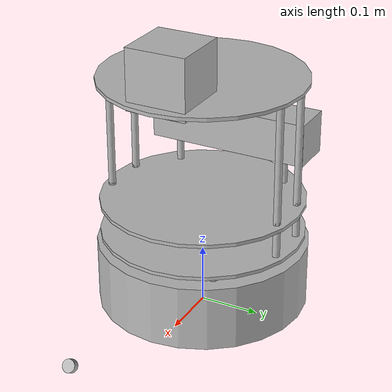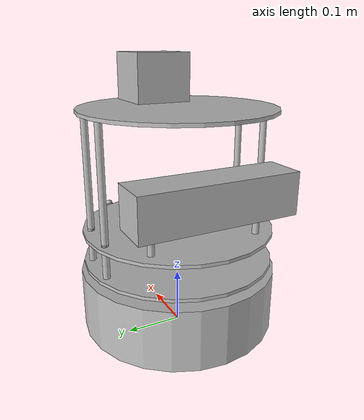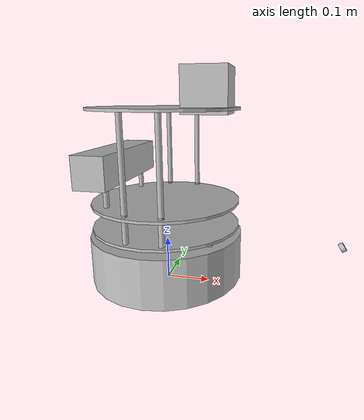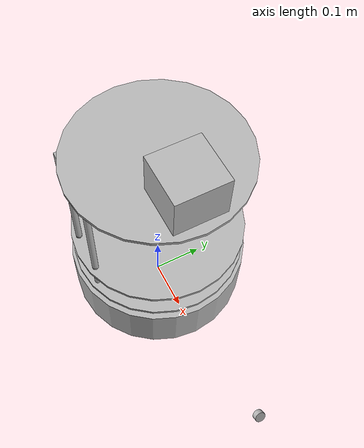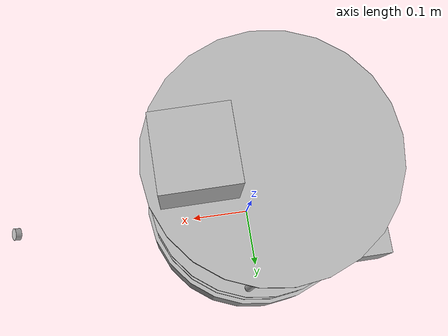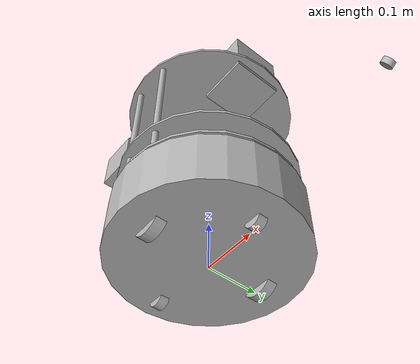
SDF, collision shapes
<sdf version='1.6'>
  <model name='turtlebot'>
    <link name='base_footprint'>
      <pose frame=''>0 0 0 0 -0 0</pose>
      <inertial>
        <pose frame=''>-0.014372 1.3e-05 0.135573 0 -0 0</pose>
        <mass>4.92131</mass>
        <inertia>
          <ixx>0.122236</ixx>
          <ixy>-4.3811e-06</ixy>
          <ixz>0.0124806</ixz>
          <iyy>0.120079</iyy>
          <iyz>6.51774e-06</iyz>
          <izz>0.0426454</izz>
        </inertia>
      </inertial>
      <collision name='base_footprint_fixed_joint_lump__base_link_collision'>
        <pose frame=''>0 0 0.06969 0 -0 0</pose>
        <geometry>
          <cylinder>
            <length>0.10938</length>
            <radius>0.176</radius>
          </cylinder>
        </geometry>
        <surface>
          <contact>
            <ode/>
          </contact>
          <friction>
            <ode/>
          </friction>
        </surface>
      </collision>
      <collision name='base_footprint_fixed_joint_lump__base_collision_collision_1'>
        <pose frame=''>0.4 0 0.1102 0 1 0</pose>
        <geometry>
          <cylinder>
            <length>0.01</length>
            <radius>0.01</radius>
          </cylinder>
        </geometry>
      </collision>
      <collision name='base_footprint_fixed_joint_lump__camera_link_collision_2'>
        <pose frame=''>-0.118 0 0.2812 0 -0 0</pose>
        <geometry>
          <box>
            <size>0.07271 0.27794 0.073</size>
          </box>
        </geometry>
        <surface>
          <contact>
            <ode/>
          </contact>
          <friction>
            <ode/>
          </friction>
        </surface>
      </collision>
      <collision name='base_footprint_fixed_joint_lump__caster_back_link_collision_3'>
        <pose frame=''>-0.135 0 0.0192 -1.5708 0 0</pose>
        <geometry>
          <cylinder>
            <length>0.0176</length>
            <radius>0.017</radius>
          </cylinder>
        </geometry>
        <surface>
          <contact>
            <ode>
              <kp>1e+08</kp>
              <kd>10000</kd>
            </ode>
          </contact>
          <friction>
            <ode>
              <mu>0</mu>
              <mu2>0</mu2>
            </ode>
          </friction>
        </surface>
      </collision>
      <collision name='base_footprint_fixed_joint_lump__caster_front_link_collision_4'>
        <pose frame=''>0.115 0 0.0172 -1.5708 0 0</pose>
        <geometry>
          <cylinder>
            <length>0.0176</length>
            <radius>0.017</radius>
          </cylinder>
        </geometry>
        <surface>
          <contact>
            <ode>
              <kp>1e+08</kp>
              <kd>10000</kd>
            </ode>
          </contact>
          <friction>
            <ode>
              <mu>0</mu>
              <mu2>0</mu2>
            </ode>
          </friction>
        </surface>
      </collision>
      <collision name='base_footprint_fixed_joint_lump__hokuyo_link_collision_5'>
        <pose frame=''>0.1 0 0.4452 0 -0 0</pose>
        <geometry>
          <box>
            <size>0.1 0.1 0.1</size>
          </box>
        </geometry>
        <surface>
          <contact>
            <ode/>
          </contact>
          <friction>
            <ode/>
          </friction>
        </surface>
      </collision>
      <collision name='base_footprint_fixed_joint_lump__plate_bottom_link_collision_6'>
        <pose frame=''>0 0 0.1408 0 -0 0</pose>
        <geometry>
          <cylinder>
            <length>0.006</length>
            <radius>0.17</radius>
          </cylinder>
        </geometry>
      </collision>
      <collision name='base_footprint_fixed_joint_lump__plate_middle_link_collision_7'>
        <pose frame=''>0 0 0.1976 0 -0 0</pose>
        <geometry>
          <cylinder>
            <length>0.006</length>
            <radius>0.17</radius>
          </cylinder>
        </geometry>
      </collision>
      <collision name='base_footprint_fixed_joint_lump__plate_top_link_collision_8'>
        <pose frame=''>0 0 0.4068 0 -0 0</pose>
        <geometry>
          <cylinder>
            <length>0.006</length>
            <radius>0.17</radius>
          </cylinder>
        </geometry>
      </collision>
      <collision name='base_footprint_fixed_joint_lump__pole_bottom_0_link_collision_9'>
        <pose frame=''>0.12 0.082 0.113 0 -0 0</pose>
        <geometry>
          <cylinder>
            <length>0.0492</length>
            <radius>0.006</radius>
          </cylinder>
        </geometry>
      </collision>
      <collision name='base_footprint_fixed_joint_lump__pole_bottom_1_link_collision_10'>
        <pose frame=''>0.055 0.12 0.113 0 -0 0</pose>
        <geometry>
          <cylinder>
            <length>0.0492</length>
            <radius>0.006</radius>
          </cylinder>
        </geometry>
      </collision>
      <collision name='base_footprint_fixed_joint_lump__pole_bottom_2_link_collision_11'>
        <pose frame=''>-0.055 0.12 0.113 0 -0 0</pose>
        <geometry>
          <cylinder>
            <length>0.0492</length>
            <radius>0.006</radius>
          </cylinder>
        </geometry>
      </collision>
      <collision name='base_footprint_fixed_joint_lump__pole_bottom_3_link_collision_12'>
        <pose frame=''>0.12 -0.082 0.113 0 -0 0</pose>
        <geometry>
          <cylinder>
            <length>0.0492</length>
            <radius>0.006</radius>
          </cylinder>
        </geometry>
      </collision>
      <collision name='base_footprint_fixed_joint_lump__pole_bottom_4_link_collision_13'>
        <pose frame=''>0.055 -0.12 0.113 0 -0 0</pose>
        <geometry>
          <cylinder>
            <length>0.0492</length>
            <radius>0.006</radius>
          </cylinder>
        </geometry>
      </collision>
      <collision name='base_footprint_fixed_joint_lump__pole_bottom_5_link_collision_14'>
        <pose frame=''>-0.055 -0.12 0.113 0 -0 0</pose>
        <geometry>
          <cylinder>
            <length>0.0492</length>
            <radius>0.006</radius>
          </cylinder>
        </geometry>
      </collision>
      <collision name='base_footprint_fixed_joint_lump__pole_kinect_0_link_collision_15'>
        <pose frame=''>-0.1024 0.098 0.2474 0 -0 0</pose>
        <geometry>
          <cylinder>
            <length>0.0936</length>
            <radius>0.006</radius>
          </cylinder>
        </geometry>
      </collision>
      <collision name='base_footprint_fixed_joint_lump__pole_kinect_1_link_collision_16'>
        <pose frame=''>-0.1024 -0.098 0.2474 0 -0 0</pose>
        <geometry>
          <cylinder>
            <length>0.0936</length>
            <radius>0.006</radius>
          </cylinder>
        </geometry>
      </collision>
      <collision name='base_footprint_fixed_joint_lump__pole_middle_0_link_collision_17'>
        <pose frame=''>0.0381 0.1505 0.1742 0 -0 0</pose>
        <geometry>
          <cylinder>
            <length>0.0608</length>
            <radius>0.006</radius>
          </cylinder>
        </geometry>
      </collision>
      <collision name='base_footprint_fixed_joint_lump__pole_middle_1_link_collision_18'>
        <pose frame=''>0.0381 -0.1505 0.1742 0 -0 0</pose>
        <geometry>
          <cylinder>
            <length>0.0608</length>
            <radius>0.006</radius>
          </cylinder>
        </geometry>
      </collision>
      <collision name='base_footprint_fixed_joint_lump__pole_middle_2_link_collision_19'>
        <pose frame=''>-0.0381 0.1505 0.1742 0 -0 0</pose>
        <geometry>
          <cylinder>
            <length>0.0608</length>
            <radius>0.006</radius>
          </cylinder>
        </geometry>
      </collision>
      <collision name='base_footprint_fixed_joint_lump__pole_middle_3_link_collision_20'>
        <pose frame=''>-0.0381 -0.1505 0.1742 0 -0 0</pose>
        <geometry>
          <cylinder>
            <length>0.0608</length>
            <radius>0.006</radius>
          </cylinder>
        </geometry>
      </collision>
      <collision name='base_footprint_fixed_joint_lump__pole_top_0_link_collision_21'>
        <pose frame=''>0.0381 0.1505 0.3022 0 -0 0</pose>
        <geometry>
          <cylinder>
            <length>0.2032</length>
            <radius>0.006</radius>
          </cylinder>
        </geometry>
      </collision>
      <collision name='base_footprint_fixed_joint_lump__pole_top_1_link_collision_22'>
        <pose frame=''>0.0381 -0.1505 0.3022 0 -0 0</pose>
        <geometry>
          <cylinder>
            <length>0.2032</length>
            <radius>0.006</radius>
          </cylinder>
        </geometry>
      </collision>
      <collision name='base_footprint_fixed_joint_lump__pole_top_2_link_collision_23'>
        <pose frame=''>-0.0381 0.1505 0.3022 0 -0 0</pose>
        <geometry>
          <cylinder>
            <length>0.2032</length>
            <radius>0.006</radius>
          </cylinder>
        </geometry>
      </collision>
      <collision name='base_footprint_fixed_joint_lump__pole_top_3_link_collision_24'>
        <pose frame=''>-0.0381 -0.1505 0.3022 0 -0 0</pose>
        <geometry>
          <cylinder>
            <length>0.2032</length>
            <radius>0.006</radius>
          </cylinder>
        </geometry>
      </collision>
      <visual name='base_footprint_fixed_joint_lump__base_link_visual'>
        <pose frame=''>0.001 0 0.06219 0 -0 0</pose>
        <geometry>
          <mesh>
            <scale>1 1 1</scale>
            <uri>model://mbot_gazebo/meshes/main_body.dae</uri>
          </mesh>
        </geometry>
        <material>
          <script>
            <uri>__default__</uri>
            <name>__default__</name>
          </script>
        </material>
      </visual>
      <visual name='base_footprint_fixed_joint_lump__bumper_link_visual_1'>
        <pose frame=''>0.4 0 0.1102 0 1 0</pose>
        <geometry>
          <cylinder>
            <length>0.01</length>
            <radius>0.01</radius>
          </cylinder>
        </geometry>
      </visual>
      <visual name='base_footprint_fixed_joint_lump__camera_link_visual_2'>
        <pose frame=''>-0.118 0 0.2812 0 -0 1.5708</pose>
        <geometry>
          <mesh>
            <scale>1 1 1</scale>
            <uri>model://mbot_gazebo/meshes/sensors/kinect.dae</uri>
          </mesh>
        </geometry>
        <material>
          <script>
            <uri>__default__</uri>
            <name>__default__</name>
          </script>
        </material>
      </visual>
      <visual name='base_footprint_fixed_joint_lump__hokuyo_link_visual_3'>
        <pose frame=''>0.1 0 0.4452 0 -0 0</pose>
        <geometry>
          <mesh>
            <scale>1 1 1</scale>
            <uri>model://mbot_gazebo/meshes/sensors/hokuyo.dae</uri>
          </mesh>
        </geometry>
        <material>
          <script>
            <uri>__default__</uri>
            <name>__default__</name>
          </script>
        </material>
      </visual>
      <visual name='base_footprint_fixed_joint_lump__plate_bottom_link_visual_4'>
        <pose frame=''>0.02364 0 0.1408 0 -0 0</pose>
        <geometry>
          <mesh>
            <scale>1 1 1</scale>
            <uri>model://mbot_gazebo/meshes/stacks/hexagons/plate_bottom.dae</uri>
          </mesh>
        </geometry>
      </visual>
      <visual name='base_footprint_fixed_joint_lump__plate_middle_link_visual_5'>
        <pose frame=''>-0.01364 0 0.1976 0 -0 0</pose>
        <geometry>
          <mesh>
            <scale>1 1 1</scale>
            <uri>model://mbot_gazebo/meshes/stacks/hexagons/plate_middle.dae</uri>
          </mesh>
        </geometry>
      </visual>
      <visual name='base_footprint_fixed_joint_lump__plate_top_link_visual_6'>
        <pose frame=''>-0.01364 0 0.4068 0 -0 0</pose>
        <geometry>
          <mesh>
            <scale>1 1 1</scale>
            <uri>model://mbot_gazebo/meshes/stacks/hexagons/plate_top.dae</uri>
          </mesh>
        </geometry>
      </visual>
      <visual name='base_footprint_fixed_joint_lump__pole_bottom_0_link_visual_7'>
        <pose frame=''>0.12 0.082 0.113 0 -0 0</pose>
        <geometry>
          <mesh>
            <scale>1 1 1</scale>
            <uri>model://mbot_gazebo/meshes/stacks/hexagons/pole_bottom.dae</uri>
          </mesh>
        </geometry>
      </visual>
      <visual name='base_footprint_fixed_joint_lump__pole_bottom_1_link_visual_8'>
        <pose frame=''>0.055 0.12 0.113 0 -0 0</pose>
        <geometry>
          <mesh>
            <scale>1 1 1</scale>
            <uri>model://mbot_gazebo/meshes/stacks/hexagons/pole_bottom.dae</uri>
          </mesh>
        </geometry>
      </visual>
      <visual name='base_footprint_fixed_joint_lump__pole_bottom_2_link_visual_9'>
        <pose frame=''>-0.055 0.12 0.113 0 -0 0</pose>
        <geometry>
          <mesh>
            <scale>1 1 1</scale>
            <uri>model://mbot_gazebo/meshes/stacks/hexagons/pole_bottom.dae</uri>
          </mesh>
        </geometry>
      </visual>
      <visual name='base_footprint_fixed_joint_lump__pole_bottom_3_link_visual_10'>
        <pose frame=''>0.12 -0.082 0.113 0 -0 0</pose>
        <geometry>
          <mesh>
            <scale>1 1 1</scale>
            <uri>model://mbot_gazebo/meshes/stacks/hexagons/pole_bottom.dae</uri>
          </mesh>
        </geometry>
      </visual>
      <visual name='base_footprint_fixed_joint_lump__pole_bottom_4_link_visual_11'>
        <pose frame=''>0.055 -0.12 0.113 0 -0 0</pose>
        <geometry>
          <mesh>
            <scale>1 1 1</scale>
            <uri>model://mbot_gazebo/meshes/stacks/hexagons/pole_bottom.dae</uri>
          </mesh>
        </geometry>
      </visual>
      <visual name='base_footprint_fixed_joint_lump__pole_bottom_5_link_visual_12'>
        <pose frame=''>-0.055 -0.12 0.113 0 -0 0</pose>
        <geometry>
          <mesh>
            <scale>1 1 1</scale>
            <uri>model://mbot_gazebo/meshes/stacks/hexagons/pole_bottom.dae</uri>
          </mesh>
        </geometry>
      </visual>
      <visual name='base_footprint_fixed_joint_lump__pole_kinect_0_link_visual_13'>
        <pose frame=''>-0.1024 0.098 0.2474 0 -0 0</pose>
        <geometry>
          <mesh>
            <scale>1 1 1</scale>
            <uri>model://mbot_gazebo/meshes/stacks/hexagons/pole_kinect.dae</uri>
          </mesh>
        </geometry>
      </visual>
      <visual name='base_footprint_fixed_joint_lump__pole_kinect_1_link_visual_14'>
        <pose frame=''>-0.1024 -0.098 0.2474 0 -0 0</pose>
        <geometry>
          <mesh>
            <scale>1 1 1</scale>
            <uri>model://mbot_gazebo/meshes/stacks/hexagons/pole_kinect.dae</uri>
          </mesh>
        </geometry>
      </visual>
      <visual name='base_footprint_fixed_joint_lump__pole_middle_0_link_visual_15'>
        <pose frame=''>0.0381 0.1505 0.1742 3.14159 -0 3.14159</pose>
        <geometry>
          <mesh>
            <scale>1 1 1</scale>
            <uri>model://mbot_gazebo/meshes/stacks/hexagons/pole_middle.dae</uri>
          </mesh>
        </geometry>
      </visual>
      <visual name='base_footprint_fixed_joint_lump__pole_middle_1_link_visual_16'>
        <pose frame=''>0.0381 -0.1505 0.1742 3.14159 -0 3.14159</pose>
        <geometry>
          <mesh>
            <scale>1 1 1</scale>
            <uri>model://mbot_gazebo/meshes/stacks/hexagons/pole_middle.dae</uri>
          </mesh>
        </geometry>
      </visual>
      <visual name='base_footprint_fixed_joint_lump__pole_middle_2_link_visual_17'>
        <pose frame=''>-0.0381 0.1505 0.1742 3.14159 -0 3.14159</pose>
        <geometry>
          <mesh>
            <scale>1 1 1</scale>
            <uri>model://mbot_gazebo/meshes/stacks/hexagons/pole_middle.dae</uri>
          </mesh>
        </geometry>
      </visual>
      <visual name='base_footprint_fixed_joint_lump__pole_middle_3_link_visual_18'>
        <pose frame=''>-0.0381 -0.1505 0.1742 3.14159 -0 3.14159</pose>
        <geometry>
          <mesh>
            <scale>1 1 1</scale>
            <uri>model://mbot_gazebo/meshes/stacks/hexagons/pole_middle.dae</uri>
          </mesh>
        </geometry>
      </visual>
      <visual name='base_footprint_fixed_joint_lump__pole_top_0_link_visual_19'>
        <pose frame=''>0.0381 0.1505 0.3022 0 -0 0</pose>
        <geometry>
          <mesh>
            <scale>1 1 1</scale>
            <uri>model://mbot_gazebo/meshes/stacks/hexagons/pole_top.dae</uri>
          </mesh>
        </geometry>
      </visual>
      <visual name='base_footprint_fixed_joint_lump__pole_top_1_link_visual_20'>
        <pose frame=''>0.0381 -0.1505 0.3022 0 -0 0</pose>
        <geometry>
          <mesh>
            <scale>1 1 1</scale>
            <uri>model://mbot_gazebo/meshes/stacks/hexagons/pole_top.dae</uri>
          </mesh>
        </geometry>
      </visual>
      <visual name='base_footprint_fixed_joint_lump__pole_top_2_link_visual_21'>
        <pose frame=''>-0.0381 0.1505 0.3022 0 -0 0</pose>
        <geometry>
          <mesh>
            <scale>1 1 1</scale>
            <uri>model://mbot_gazebo/meshes/stacks/hexagons/pole_top.dae</uri>
          </mesh>
        </geometry>
      </visual>
      <visual name='base_footprint_fixed_joint_lump__pole_top_3_link_visual_22'>
        <pose frame=''>-0.0381 -0.1505 0.3022 0 -0 0</pose>
        <geometry>
          <mesh>
            <scale>1 1 1</scale>
            <uri>model://mbot_gazebo/meshes/stacks/hexagons/pole_top.dae</uri>
          </mesh>
        </geometry>
      </visual>
      <velocity_decay/>
      <velocity_decay/>
      <sensor name='camera' type='depth'>
        <always_on>1</always_on>
        <update_rate>20</update_rate>
        <camera name='__default__'>
          <horizontal_fov>1.0472</horizontal_fov>
          <image>
            <format>B8G8R8</format>
            <width>640</width>
            <height>480</height>
          </image>
          <clip>
            <near>0.05</near>
            <far>8</far>
          </clip>
        </camera>
        <plugin name='kinect_camera_controller' filename='libgazebo_ros_openni_kinect.so'>
          <cameraName>camera</cameraName>
          <alwaysOn>1</alwaysOn>
          <updateRate>10</updateRate>
          <imageTopicName>rgb/image_raw</imageTopicName>
          <depthImageTopicName>depth/image_raw</depthImageTopicName>
          <pointCloudTopicName>depth/points</pointCloudTopicName>
          <cameraInfoTopicName>rgb/camera_info</cameraInfoTopicName>
          <depthImageCameraInfoTopicName>depth/camera_info</depthImageCameraInfoTopicName>
          <frameName>camera_depth_optical_frame</frameName>
          <baseline>0.1</baseline>
          <distortion_k1>0.0</distortion_k1>
          <distortion_k2>0.0</distortion_k2>
          <distortion_k3>0.0</distortion_k3>
          <distortion_t1>0.0</distortion_t1>
          <distortion_t2>0.0</distortion_t2>
          <pointCloudCutoff>0.4</pointCloudCutoff>
        </plugin>
        <pose frame=''>-0.118 0 0.2812 0 -0 0</pose>
      </sensor>
      <velocity_decay/>
      <velocity_decay/>
      <velocity_decay/>
      <velocity_decay/>
      <velocity_decay/>
      <gravity>1</gravity>
      <velocity_decay/>
      <sensor name='head_hokuyo_sensor' type='ray'>
        <visualize>0</visualize>
        <update_rate>40</update_rate>
        <ray>
          <scan>
            <horizontal>
              <samples>720</samples>
              <resolution>1</resolution>
              <min_angle>-3.14159</min_angle>
              <max_angle>3.14159</max_angle>
            </horizontal>
          </scan>
          <range>
            <min>0.1</min>
            <max>50</max>
            <resolution>0.01</resolution>
          </range>
          <noise>
            <type>gaussian</type>
            <mean>0</mean>
            <stddev>0.01</stddev>
          </noise>
        </ray>
        <plugin name='gazebo_ros_head_hokuyo_controller' filename='libgazebo_ros_laser.so'>
          <topicName>scan</topicName>
          <frameName>hokuyo_link</frameName>
        </plugin>
        <pose frame=''>0.1 0 0.4452 0 -0 0</pose>
      </sensor>
    </link>
    <link name='wheel_left_link'>
      <pose frame=''>0 0.115 0.0352 -1.5708 0 0</pose>
      <inertial>
        <pose frame=''>0 0 0 0 -0 0</pose>
        <mass>0.01</mass>
        <inertia>
          <ixx>0.001</ixx>
          <ixy>0</ixy>
          <ixz>0</ixz>
          <iyy>0.001</iyy>
          <iyz>0</iyz>
          <izz>0.001</izz>
        </inertia>
      </inertial>
      <collision name='wheel_left_link_collision'>
        <pose frame=''>0 0 0 0 -0 0</pose>
        <geometry>
          <cylinder>
            <length>0.0206</length>
            <radius>0.0352</radius>
          </cylinder>
        </geometry>
        <surface>
          <contact>
            <ode>
              <kp>1e+08</kp>
              <kd>10000</kd>
            </ode>
          </contact>
          <friction>
            <ode>
              <mu>10</mu>
              <mu2>10</mu2>
            </ode>
          </friction>
        </surface>
      </collision>
      <visual name='wheel_left_link_visual'>
        <pose frame=''>0 0 0 0 -0 0</pose>
        <geometry>
          <mesh>
            <scale>1 1 1</scale>
            <uri>model://mbot_gazebo/meshes/wheel.dae</uri>
          </mesh>
        </geometry>
        <material>
          <script>
            <uri>__default__</uri>
            <name>__default__</name>
          </script>
        </material>
      </visual>
      <gravity>1</gravity>
      <velocity_decay/>
    </link>
    <joint name='wheel_left_joint' type='revolute'>
      <child>wheel_left_link</child>
      <parent>base_footprint</parent>
      <axis>
        <xyz>0 1 0</xyz>
        <limit>
          <lower>-1e+16</lower>
          <upper>1e+16</upper>
        </limit>
        <dynamics>
          <spring_reference>0</spring_reference>
          <spring_stiffness>0</spring_stiffness>
        </dynamics>
        <use_parent_model_frame>1</use_parent_model_frame>
      </axis>
    </joint>
    <link name='wheel_right_link'>
      <pose frame=''>0 -0.115 0.0352 -1.5708 0 0</pose>
      <inertial>
        <pose frame=''>0 0 0 0 -0 0</pose>
        <mass>0.01</mass>
        <inertia>
          <ixx>0.001</ixx>
          <ixy>0</ixy>
          <ixz>0</ixz>
          <iyy>0.001</iyy>
          <iyz>0</iyz>
          <izz>0.001</izz>
        </inertia>
      </inertial>
      <collision name='wheel_right_link_collision'>
        <pose frame=''>0 0 0 0 -0 0</pose>
        <geometry>
          <cylinder>
            <length>0.0206</length>
            <radius>0.035</radius>
          </cylinder>
        </geometry>
        <surface>
          <contact>
            <ode>
              <kp>1e+08</kp>
              <kd>10000</kd>
            </ode>
          </contact>
          <friction>
            <ode>
              <mu>10</mu>
              <mu2>10</mu2>
            </ode>
          </friction>
        </surface>
      </collision>
      <visual name='wheel_right_link_visual'>
        <pose frame=''>0 0 0 0 -0 0</pose>
        <geometry>
          <mesh>
            <scale>1 1 1</scale>
            <uri>model://mbot_gazebo/meshes/wheel.dae</uri>
          </mesh>
        </geometry>
        <material>
          <script>
            <uri>__default__</uri>
            <name>__default__</name>
          </script>
        </material>
      </visual>
      <gravity>1</gravity>
      <velocity_decay/>
    </link>
    <joint name='wheel_right_joint' type='revolute'>
      <child>wheel_right_link</child>
      <parent>base_footprint</parent>
      <axis>
        <xyz>0 1 0</xyz>
        <limit>
          <lower>-1e+16</lower>
          <upper>1e+16</upper>
        </limit>
        <dynamics>
          <spring_reference>0</spring_reference>
          <spring_stiffness>0</spring_stiffness>
        </dynamics>
        <use_parent_model_frame>1</use_parent_model_frame>
      </axis>
    </joint>
    <plugin name='differential_drive_controller' filename='libgazebo_ros_diff_drive.so'>
      <rosDebugLevel>Debug</rosDebugLevel>
      <publishWheelTF>1</publishWheelTF>
      <robotNamespace>/</robotNamespace>
      <publishTf>1</publishTf>
      <publishWheelJointState>1</publishWheelJointState>
      <alwaysOn>1</alwaysOn>
      <updateRate>100.`</updateRate>
      <legacyMode>1</legacyMode>
      <leftJoint>wheel_left_joint</leftJoint>
      <rightJoint>wheel_right_joint</rightJoint>
      <wheelSeparation>.230</wheelSeparation>
      <wheelDiameter>0.07</wheelDiameter>
      <broadcastTF>1</broadcastTF>
      <wheelTorque>1</wheelTorque>
      <wheelAcceleration>0.8</wheelAcceleration>
      <commandTopic>cmd_vel</commandTopic>
      <odometryFrame>odom</odometryFrame>
      <odometryTopic>odom</odometryTopic>
      <robotBaseFrame>base_link</robotBaseFrame>
    </plugin>
    <static>0</static>
  </model>
</sdf>
